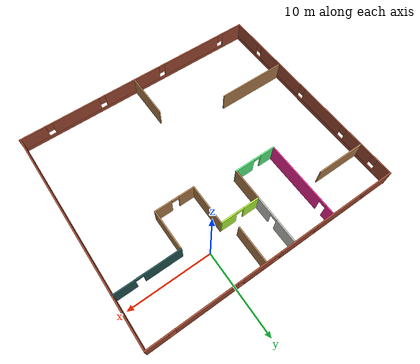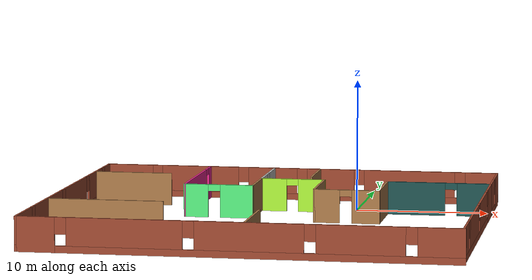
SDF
<?xml version='1.0'?>
<sdf version='1.7'>
  <model name='mybuilding'>
    <pose>-5.10873 -8.92301 0 0 -0 0</pose>
    <link name='Wall_0'>
      <pose>-0.038918 13.3566 0 0 -0 -0.003284</pose>
      <visual name='Wall_0_Visual_0'>
        <pose>-13.7512 0 1.25 0 -0 0</pose>
        <geometry>
          <box>
            <size>3.66966 0.15 2.5</size>
          </box>
        </geometry>
        <material>
          <script>
            <uri>file://media/materials/scripts/gazebo.material</uri>
            <name>Gazebo/Bricks</name>
          </script>
          <ambient>0.2 0.870588 0.976471 1</ambient>
        </material>
        <meta>
          <layer>0</layer>
        </meta>
      </visual>
      <collision name='Wall_0_Collision_0'>
        <geometry>
          <box>
            <size>3.66966 0.15 2.5</size>
          </box>
        </geometry>
        <pose>-13.7512 0 1.25 0 -0 0</pose>
      </collision>
      <visual name='Wall_0_Visual_1'>
        <pose>1.83483 0 0.25 0 -0 0</pose>
        <geometry>
          <box>
            <size>27.5025 0.15 0.5</size>
          </box>
        </geometry>
        <material>
          <script>
            <uri>file://media/materials/scripts/gazebo.material</uri>
            <name>Gazebo/Bricks</name>
          </script>
          <ambient>0.2 0.870588 0.976471 1</ambient>
        </material>
        <meta>
          <layer>0</layer>
        </meta>
      </visual>
      <collision name='Wall_0_Collision_1'>
        <geometry>
          <box>
            <size>27.5025 0.15 0.5</size>
          </box>
        </geometry>
        <pose>1.83483 0 0.25 0 -0 0</pose>
      </collision>
      <visual name='Wall_0_Visual_2'>
        <pose>-8.03594 0 1.5 0 -0 0</pose>
        <geometry>
          <box>
            <size>6.16095 0.15 2</size>
          </box>
        </geometry>
        <material>
          <script>
            <uri>file://media/materials/scripts/gazebo.material</uri>
            <name>Gazebo/Bricks</name>
          </script>
          <ambient>0.2 0.870588 0.976471 1</ambient>
        </material>
        <meta>
          <layer>0</layer>
        </meta>
      </visual>
      <collision name='Wall_0_Collision_2'>
        <geometry>
          <box>
            <size>6.16095 0.15 2</size>
          </box>
        </geometry>
        <pose>-8.03594 0 1.5 0 -0 0</pose>
      </collision>
      <visual name='Wall_0_Visual_3'>
        <pose>-2.21186 0 1.5 0 -0 0</pose>
        <geometry>
          <box>
            <size>3.8872 0.15 2</size>
          </box>
        </geometry>
        <material>
          <script>
            <uri>file://media/materials/scripts/gazebo.material</uri>
            <name>Gazebo/Bricks</name>
          </script>
          <ambient>0.2 0.870588 0.976471 1</ambient>
        </material>
        <meta>
          <layer>0</layer>
        </meta>
      </visual>
      <collision name='Wall_0_Collision_3'>
        <geometry>
          <box>
            <size>3.8872 0.15 2</size>
          </box>
        </geometry>
        <pose>-2.21186 0 1.5 0 -0 0</pose>
      </collision>
      <visual name='Wall_0_Visual_4'>
        <pose>2.41432 0 1.5 0 -0 0</pose>
        <geometry>
          <box>
            <size>3.76517 0.15 2</size>
          </box>
        </geometry>
        <material>
          <script>
            <uri>file://media/materials/scripts/gazebo.material</uri>
            <name>Gazebo/Bricks</name>
          </script>
          <ambient>0.2 0.870588 0.976471 1</ambient>
        </material>
        <meta>
          <layer>0</layer>
        </meta>
      </visual>
      <collision name='Wall_0_Collision_4'>
        <geometry>
          <box>
            <size>3.76517 0.15 2</size>
          </box>
        </geometry>
        <pose>2.41432 0 1.5 0 -0 0</pose>
      </collision>
      <visual name='Wall_0_Visual_5'>
        <pose>8.65852 0 1.5 0 -0 0</pose>
        <geometry>
          <box>
            <size>7.12324 0.15 2</size>
          </box>
        </geometry>
        <material>
          <script>
            <uri>file://media/materials/scripts/gazebo.material</uri>
            <name>Gazebo/Bricks</name>
          </script>
          <ambient>0.2 0.870588 0.976471 1</ambient>
        </material>
        <meta>
          <layer>0</layer>
        </meta>
      </visual>
      <collision name='Wall_0_Collision_5'>
        <geometry>
          <box>
            <size>7.12324 0.15 2</size>
          </box>
        </geometry>
        <pose>8.65852 0 1.5 0 -0 0</pose>
      </collision>
      <visual name='Wall_0_Visual_6'>
        <pose>14.3031 0 1.5 0 -0 0</pose>
        <geometry>
          <box>
            <size>2.56593 0.15 2</size>
          </box>
        </geometry>
        <material>
          <script>
            <uri>file://media/materials/scripts/gazebo.material</uri>
            <name>Gazebo/Bricks</name>
          </script>
          <ambient>0.2 0.870588 0.976471 1</ambient>
        </material>
        <meta>
          <layer>0</layer>
        </meta>
      </visual>
      <collision name='Wall_0_Collision_6'>
        <geometry>
          <box>
            <size>2.56593 0.15 2</size>
          </box>
        </geometry>
        <pose>14.3031 0 1.5 0 -0 0</pose>
      </collision>
      <visual name='Wall_0_Visual_7'>
        <pose>-11.5164 0 1.9 0 -0 0</pose>
        <geometry>
          <box>
            <size>0.8 0.15 1.2</size>
          </box>
        </geometry>
        <material>
          <script>
            <uri>file://media/materials/scripts/gazebo.material</uri>
            <name>Gazebo/Bricks</name>
          </script>
          <ambient>0.2 0.870588 0.976471 1</ambient>
        </material>
        <meta>
          <layer>0</layer>
        </meta>
      </visual>
      <collision name='Wall_0_Collision_7'>
        <geometry>
          <box>
            <size>0.8 0.15 1.2</size>
          </box>
        </geometry>
        <pose>-11.5164 0 1.9 0 -0 0</pose>
      </collision>
      <visual name='Wall_0_Visual_8'>
        <pose>-4.55546 0 1.9 0 -0 0</pose>
        <geometry>
          <box>
            <size>0.8 0.15 1.2</size>
          </box>
        </geometry>
        <material>
          <script>
            <uri>file://media/materials/scripts/gazebo.material</uri>
            <name>Gazebo/Bricks</name>
          </script>
          <ambient>0.2 0.870588 0.976471 1</ambient>
        </material>
        <meta>
          <layer>0</layer>
        </meta>
      </visual>
      <collision name='Wall_0_Collision_8'>
        <geometry>
          <box>
            <size>0.8 0.15 1.2</size>
          </box>
        </geometry>
        <pose>-4.55546 0 1.9 0 -0 0</pose>
      </collision>
      <visual name='Wall_0_Visual_9'>
        <pose>0.131735 0 1.9 0 -0 0</pose>
        <geometry>
          <box>
            <size>0.8 0.15 1.2</size>
          </box>
        </geometry>
        <material>
          <script>
            <uri>file://media/materials/scripts/gazebo.material</uri>
            <name>Gazebo/Bricks</name>
          </script>
          <ambient>0.2 0.870588 0.976471 1</ambient>
        </material>
        <meta>
          <layer>0</layer>
        </meta>
      </visual>
      <collision name='Wall_0_Collision_9'>
        <geometry>
          <box>
            <size>0.8 0.15 1.2</size>
          </box>
        </geometry>
        <pose>0.131735 0 1.9 0 -0 0</pose>
      </collision>
      <visual name='Wall_0_Visual_10'>
        <pose>4.6969 0 1.9 0 -0 0</pose>
        <geometry>
          <box>
            <size>0.8 0.15 1.2</size>
          </box>
        </geometry>
        <material>
          <script>
            <uri>file://media/materials/scripts/gazebo.material</uri>
            <name>Gazebo/Bricks</name>
          </script>
          <ambient>0.2 0.870588 0.976471 1</ambient>
        </material>
        <meta>
          <layer>0</layer>
        </meta>
      </visual>
      <collision name='Wall_0_Collision_10'>
        <geometry>
          <box>
            <size>0.8 0.15 1.2</size>
          </box>
        </geometry>
        <pose>4.6969 0 1.9 0 -0 0</pose>
      </collision>
      <visual name='Wall_0_Visual_11'>
        <pose>12.6201 0 1.9 0 -0 0</pose>
        <geometry>
          <box>
            <size>0.8 0.15 1.2</size>
          </box>
        </geometry>
        <material>
          <script>
            <uri>file://media/materials/scripts/gazebo.material</uri>
            <name>Gazebo/Bricks</name>
          </script>
          <ambient>0.2 0.870588 0.976471 1</ambient>
        </material>
        <meta>
          <layer>0</layer>
        </meta>
      </visual>
      <collision name='Wall_0_Collision_11'>
        <geometry>
          <box>
            <size>0.8 0.15 1.2</size>
          </box>
        </geometry>
        <pose>12.6201 0 1.9 0 -0 0</pose>
      </collision>
    </link>
    <link name='Wall_1'>
      <pose>15.472 10.3719 0 0 -0 -1.5708</pose>
      <visual name='Wall_1_Visual_0'>
        <pose>-1.65507 0 1.25 0 -0 0</pose>
        <geometry>
          <box>
            <size>2.70735 0.15 2.5</size>
          </box>
        </geometry>
        <material>
          <script>
            <uri>file://media/materials/scripts/gazebo.material</uri>
            <name>Gazebo/Bricks</name>
          </script>
          <ambient>1 1 1 1</ambient>
        </material>
        <meta>
          <layer>0</layer>
        </meta>
      </visual>
      <collision name='Wall_1_Collision_0'>
        <geometry>
          <box>
            <size>2.70735 0.15 2.5</size>
          </box>
        </geometry>
        <pose>-1.65507 0 1.25 0 -0 0</pose>
      </collision>
      <visual name='Wall_1_Visual_1'>
        <pose>1.35367 0 0.25 0 -0 0</pose>
        <geometry>
          <box>
            <size>3.31014 0.15 0.5</size>
          </box>
        </geometry>
        <material>
          <script>
            <uri>file://media/materials/scripts/gazebo.material</uri>
            <name>Gazebo/Bricks</name>
          </script>
          <ambient>1 1 1 1</ambient>
        </material>
        <meta>
          <layer>0</layer>
        </meta>
      </visual>
      <collision name='Wall_1_Collision_1'>
        <geometry>
          <box>
            <size>3.31014 0.15 0.5</size>
          </box>
        </geometry>
        <pose>1.35367 0 0.25 0 -0 0</pose>
      </collision>
      <visual name='Wall_1_Visual_2'>
        <pose>1.75367 0 1.5 0 -0 0</pose>
        <geometry>
          <box>
            <size>2.51015 0.15 2</size>
          </box>
        </geometry>
        <material>
          <script>
            <uri>file://media/materials/scripts/gazebo.material</uri>
            <name>Gazebo/Bricks</name>
          </script>
          <ambient>1 1 1 1</ambient>
        </material>
        <meta>
          <layer>0</layer>
        </meta>
      </visual>
      <collision name='Wall_1_Collision_2'>
        <geometry>
          <box>
            <size>2.51015 0.15 2</size>
          </box>
        </geometry>
        <pose>1.75367 0 1.5 0 -0 0</pose>
      </collision>
      <visual name='Wall_1_Visual_3'>
        <pose>0.0986 0 1.9 0 -0 0</pose>
        <geometry>
          <box>
            <size>0.8 0.15 1.2</size>
          </box>
        </geometry>
        <material>
          <script>
            <uri>file://media/materials/scripts/gazebo.material</uri>
            <name>Gazebo/Bricks</name>
          </script>
          <ambient>1 1 1 1</ambient>
        </material>
        <meta>
          <layer>0</layer>
        </meta>
      </visual>
      <collision name='Wall_1_Collision_3'>
        <geometry>
          <box>
            <size>0.8 0.15 1.2</size>
          </box>
        </geometry>
        <pose>0.0986 0 1.9 0 -0 0</pose>
      </collision>
    </link>
    <link name='Wall_13'>
      <pose>-15.5498 0 0 0 -0 -1.5708</pose>
      <visual name='Wall_13_Visual_0'>
        <pose>-12.5326 0 1.25 0 -0 0</pose>
        <geometry>
          <box>
            <size>1.93471 0.15 2.5</size>
          </box>
        </geometry>
        <material>
          <script>
            <uri>file://media/materials/scripts/gazebo.material</uri>
            <name>Gazebo/Bricks</name>
          </script>
          <ambient>1 1 1 1</ambient>
        </material>
        <meta>
          <layer>0</layer>
        </meta>
      </visual>
      <collision name='Wall_13_Collision_0'>
        <geometry>
          <box>
            <size>1.93471 0.15 2.5</size>
          </box>
        </geometry>
        <pose>-12.5326 0 1.25 0 -0 0</pose>
      </collision>
      <visual name='Wall_13_Visual_1'>
        <pose>0.967357 0 0.25 0 -0 0</pose>
        <geometry>
          <box>
            <size>25.0653 0.15 0.5</size>
          </box>
        </geometry>
        <material>
          <script>
            <uri>file://media/materials/scripts/gazebo.material</uri>
            <name>Gazebo/Bricks</name>
          </script>
          <ambient>1 1 1 1</ambient>
        </material>
        <meta>
          <layer>0</layer>
        </meta>
      </visual>
      <collision name='Wall_13_Collision_1'>
        <geometry>
          <box>
            <size>25.0653 0.15 0.5</size>
          </box>
        </geometry>
        <pose>0.967357 0 0.25 0 -0 0</pose>
      </collision>
      <visual name='Wall_13_Visual_2'>
        <pose>-8.73812 0 1.5 0 -0 0</pose>
        <geometry>
          <box>
            <size>4.05434 0.15 2</size>
          </box>
        </geometry>
        <material>
          <script>
            <uri>file://media/materials/scripts/gazebo.material</uri>
            <name>Gazebo/Bricks</name>
          </script>
          <ambient>1 1 1 1</ambient>
        </material>
        <meta>
          <layer>0</layer>
        </meta>
      </visual>
      <collision name='Wall_13_Collision_2'>
        <geometry>
          <box>
            <size>4.05434 0.15 2</size>
          </box>
        </geometry>
        <pose>-8.73812 0 1.5 0 -0 0</pose>
      </collision>
      <visual name='Wall_13_Visual_3'>
        <pose>-2.77133 0 1.5 0 -0 0</pose>
        <geometry>
          <box>
            <size>6.27924 0.15 2</size>
          </box>
        </geometry>
        <material>
          <script>
            <uri>file://media/materials/scripts/gazebo.material</uri>
            <name>Gazebo/Bricks</name>
          </script>
          <ambient>1 1 1 1</ambient>
        </material>
        <meta>
          <layer>0</layer>
        </meta>
      </visual>
      <collision name='Wall_13_Collision_3'>
        <geometry>
          <box>
            <size>6.27924 0.15 2</size>
          </box>
        </geometry>
        <pose>-2.77133 0 1.5 0 -0 0</pose>
      </collision>
      <visual name='Wall_13_Visual_4'>
        <pose>4.913 0 1.5 0 -0 0</pose>
        <geometry>
          <box>
            <size>7.48941 0.15 2</size>
          </box>
        </geometry>
        <material>
          <script>
            <uri>file://media/materials/scripts/gazebo.material</uri>
            <name>Gazebo/Bricks</name>
          </script>
          <ambient>1 1 1 1</ambient>
        </material>
        <meta>
          <layer>0</layer>
        </meta>
      </visual>
      <collision name='Wall_13_Collision_4'>
        <geometry>
          <box>
            <size>7.48941 0.15 2</size>
          </box>
        </geometry>
        <pose>4.913 0 1.5 0 -0 0</pose>
      </collision>
      <visual name='Wall_13_Visual_5'>
        <pose>11.4789 0 1.5 0 -0 0</pose>
        <geometry>
          <box>
            <size>4.04229 0.15 2</size>
          </box>
        </geometry>
        <material>
          <script>
            <uri>file://media/materials/scripts/gazebo.material</uri>
            <name>Gazebo/Bricks</name>
          </script>
          <ambient>1 1 1 1</ambient>
        </material>
        <meta>
          <layer>0</layer>
        </meta>
      </visual>
      <collision name='Wall_13_Collision_5'>
        <geometry>
          <box>
            <size>4.04229 0.15 2</size>
          </box>
        </geometry>
        <pose>11.4789 0 1.5 0 -0 0</pose>
      </collision>
      <visual name='Wall_13_Visual_6'>
        <pose>-11.1653 0 1.9 0 -0 0</pose>
        <geometry>
          <box>
            <size>0.8 0.15 1.2</size>
          </box>
        </geometry>
        <material>
          <script>
            <uri>file://media/materials/scripts/gazebo.material</uri>
            <name>Gazebo/Bricks</name>
          </script>
          <ambient>1 1 1 1</ambient>
        </material>
        <meta>
          <layer>0</layer>
        </meta>
      </visual>
      <collision name='Wall_13_Collision_6'>
        <geometry>
          <box>
            <size>0.8 0.15 1.2</size>
          </box>
        </geometry>
        <pose>-11.1653 0 1.9 0 -0 0</pose>
      </collision>
      <visual name='Wall_13_Visual_7'>
        <pose>-6.31095 0 1.9 0 -0 0</pose>
        <geometry>
          <box>
            <size>0.8 0.15 1.2</size>
          </box>
        </geometry>
        <material>
          <script>
            <uri>file://media/materials/scripts/gazebo.material</uri>
            <name>Gazebo/Bricks</name>
          </script>
          <ambient>1 1 1 1</ambient>
        </material>
        <meta>
          <layer>0</layer>
        </meta>
      </visual>
      <collision name='Wall_13_Collision_7'>
        <geometry>
          <box>
            <size>0.8 0.15 1.2</size>
          </box>
        </geometry>
        <pose>-6.31095 0 1.9 0 -0 0</pose>
      </collision>
      <visual name='Wall_13_Visual_8'>
        <pose>0.768294 0 1.9 0 -0 0</pose>
        <geometry>
          <box>
            <size>0.8 0.15 1.2</size>
          </box>
        </geometry>
        <material>
          <script>
            <uri>file://media/materials/scripts/gazebo.material</uri>
            <name>Gazebo/Bricks</name>
          </script>
          <ambient>1 1 1 1</ambient>
        </material>
        <meta>
          <layer>0</layer>
        </meta>
      </visual>
      <collision name='Wall_13_Collision_8'>
        <geometry>
          <box>
            <size>0.8 0.15 1.2</size>
          </box>
        </geometry>
        <pose>0.768294 0 1.9 0 -0 0</pose>
      </collision>
      <visual name='Wall_13_Visual_9'>
        <pose>9.05771 0 1.9 0 -0 0</pose>
        <geometry>
          <box>
            <size>0.8 0.15 1.2</size>
          </box>
        </geometry>
        <material>
          <script>
            <uri>file://media/materials/scripts/gazebo.material</uri>
            <name>Gazebo/Bricks</name>
          </script>
          <ambient>1 1 1 1</ambient>
        </material>
        <meta>
          <layer>0</layer>
        </meta>
      </visual>
      <collision name='Wall_13_Collision_9'>
        <geometry>
          <box>
            <size>0.8 0.15 1.2</size>
          </box>
        </geometry>
        <pose>9.05771 0 1.9 0 -0 0</pose>
      </collision>
    </link>
    <link name='Wall_15'>
      <collision name='Wall_15_Collision'>
        <geometry>
          <box>
            <size>6 0.15 2.5</size>
          </box>
        </geometry>
        <pose>0 0 1.25 0 -0 0</pose>
      </collision>
      <visual name='Wall_15_Visual'>
        <pose>0 0 1.25 0 -0 0</pose>
        <geometry>
          <box>
            <size>6 0.15 2.5</size>
          </box>
        </geometry>
        <material>
          <script>
            <uri>file://media/materials/scripts/gazebo.material</uri>
            <name>Gazebo/Wood</name>
          </script>
          <ambient>1 0.247059 0 1</ambient>
        </material>
        <meta>
          <layer>0</layer>
        </meta>
      </visual>
      <pose>-12.4748 9.00308 0 0 -0 0</pose>
    </link>
    <link name='Wall_17'>
      <pose>-7.26385 8.45623 0 0 -0 -1.5708</pose>
      <visual name='Wall_17_Visual_0'>
        <pose>-4.34012 0 1.25 0 -0 0</pose>
        <geometry>
          <box>
            <size>1.06976 0.15 2.5</size>
          </box>
        </geometry>
        <material>
          <script>
            <uri>file://media/materials/scripts/gazebo.material</uri>
            <name>Gazebo/Grey</name>
          </script>
          <ambient>0.976471 0.152941 0.596078 1</ambient>
        </material>
        <meta>
          <layer>0</layer>
        </meta>
      </visual>
      <collision name='Wall_17_Collision_0'>
        <geometry>
          <box>
            <size>1.06976 0.15 2.5</size>
          </box>
        </geometry>
        <pose>-4.34012 0 1.25 0 -0 0</pose>
      </collision>
      <visual name='Wall_17_Visual_1'>
        <pose>0.98488 0 1.25 0 -0 0</pose>
        <geometry>
          <box>
            <size>7.78024 0.15 2.5</size>
          </box>
        </geometry>
        <material>
          <script>
            <uri>file://media/materials/scripts/gazebo.material</uri>
            <name>Gazebo/Grey</name>
          </script>
          <ambient>0.976471 0.152941 0.596078 1</ambient>
        </material>
        <meta>
          <layer>0</layer>
        </meta>
      </visual>
      <collision name='Wall_17_Collision_1'>
        <geometry>
          <box>
            <size>7.78024 0.15 2.5</size>
          </box>
        </geometry>
        <pose>0.98488 0 1.25 0 -0 0</pose>
      </collision>
      <visual name='Wall_17_Visual_2'>
        <pose>-3.35524 0 2.25 0 -0 0</pose>
        <geometry>
          <box>
            <size>0.9 0.15 0.5</size>
          </box>
        </geometry>
        <material>
          <script>
            <uri>file://media/materials/scripts/gazebo.material</uri>
            <name>Gazebo/Grey</name>
          </script>
          <ambient>0.976471 0.152941 0.596078 1</ambient>
        </material>
        <meta>
          <layer>0</layer>
        </meta>
      </visual>
      <collision name='Wall_17_Collision_2'>
        <geometry>
          <box>
            <size>0.9 0.15 0.5</size>
          </box>
        </geometry>
        <pose>-3.35524 0 2.25 0 -0 0</pose>
      </collision>
    </link>
    <link name='Wall_19'>
      <pose>-4.67092 3.6587 0 0 -0 -3.14064</pose>
      <visual name='Wall_19_Visual_0'>
        <pose>-1.39262 0 1.25 0 -0 0</pose>
        <geometry>
          <box>
            <size>2.55062 0.15 2.5</size>
          </box>
        </geometry>
        <material>
          <script>
            <uri>file://media/materials/scripts/gazebo.material</uri>
            <name>Gazebo/Grey</name>
          </script>
          <ambient>0.352941 0.976471 0.521569 1</ambient>
        </material>
        <meta>
          <layer>0</layer>
        </meta>
      </visual>
      <collision name='Wall_19_Collision_0'>
        <geometry>
          <box>
            <size>2.55062 0.15 2.5</size>
          </box>
        </geometry>
        <pose>-1.39262 0 1.25 0 -0 0</pose>
      </collision>
      <visual name='Wall_19_Visual_1'>
        <pose>1.72531 0 1.25 0 -0 0</pose>
        <geometry>
          <box>
            <size>1.88525 0.15 2.5</size>
          </box>
        </geometry>
        <material>
          <script>
            <uri>file://media/materials/scripts/gazebo.material</uri>
            <name>Gazebo/Grey</name>
          </script>
          <ambient>0.352941 0.976471 0.521569 1</ambient>
        </material>
        <meta>
          <layer>0</layer>
        </meta>
      </visual>
      <collision name='Wall_19_Collision_1'>
        <geometry>
          <box>
            <size>1.88525 0.15 2.5</size>
          </box>
        </geometry>
        <pose>1.72531 0 1.25 0 -0 0</pose>
      </collision>
      <visual name='Wall_19_Visual_2'>
        <pose>0.332686 0 2.25 0 -0 0</pose>
        <geometry>
          <box>
            <size>0.9 0.15 0.5</size>
          </box>
        </geometry>
        <material>
          <script>
            <uri>file://media/materials/scripts/gazebo.material</uri>
            <name>Gazebo/Grey</name>
          </script>
          <ambient>0.352941 0.976471 0.521569 1</ambient>
        </material>
        <meta>
          <layer>0</layer>
        </meta>
      </visual>
      <collision name='Wall_19_Collision_2'>
        <geometry>
          <box>
            <size>0.9 0.15 0.5</size>
          </box>
        </geometry>
        <pose>0.332686 0 2.25 0 -0 0</pose>
      </collision>
    </link>
    <link name='Wall_2'>
      <pose>11.547 7.43815 0 0 -0 3.14159</pose>
      <visual name='Wall_2_Visual_0'>
        <pose>-2.68952 0 1.25 0 -0 0</pose>
        <geometry>
          <box>
            <size>2.62095 0.15 2.5</size>
          </box>
        </geometry>
        <material>
          <script>
            <uri>file://media/materials/scripts/gazebo.material</uri>
            <name>Gazebo/Grey</name>
          </script>
          <ambient>0.133333 0.341176 0.329412 1</ambient>
        </material>
        <meta>
          <layer>0</layer>
        </meta>
      </visual>
      <collision name='Wall_2_Collision_0'>
        <geometry>
          <box>
            <size>2.62095 0.15 2.5</size>
          </box>
        </geometry>
        <pose>-2.68952 0 1.25 0 -0 0</pose>
      </collision>
      <visual name='Wall_2_Visual_1'>
        <pose>1.76048 0 1.25 0 -0 0</pose>
        <geometry>
          <box>
            <size>4.47905 0.15 2.5</size>
          </box>
        </geometry>
        <material>
          <script>
            <uri>file://media/materials/scripts/gazebo.material</uri>
            <name>Gazebo/Grey</name>
          </script>
          <ambient>0.133333 0.341176 0.329412 1</ambient>
        </material>
        <meta>
          <layer>0</layer>
        </meta>
      </visual>
      <collision name='Wall_2_Collision_1'>
        <geometry>
          <box>
            <size>4.47905 0.15 2.5</size>
          </box>
        </geometry>
        <pose>1.76048 0 1.25 0 -0 0</pose>
      </collision>
      <visual name='Wall_2_Visual_2'>
        <pose>-0.929045 0 2.25 0 -0 0</pose>
        <geometry>
          <box>
            <size>0.9 0.15 0.5</size>
          </box>
        </geometry>
        <material>
          <script>
            <uri>file://media/materials/scripts/gazebo.material</uri>
            <name>Gazebo/Grey</name>
          </script>
          <ambient>0.133333 0.341176 0.329412 1</ambient>
        </material>
        <meta>
          <layer>0</layer>
        </meta>
      </visual>
      <collision name='Wall_2_Collision_2'>
        <geometry>
          <box>
            <size>0.9 0.15 0.5</size>
          </box>
        </geometry>
        <pose>-0.929045 0 2.25 0 -0 0</pose>
      </collision>
    </link>
    <link name='Wall_22'>
      <collision name='Wall_22_Collision'>
        <geometry>
          <box>
            <size>4.5 0.15 2.5</size>
          </box>
        </geometry>
        <pose>0 0 1.25 0 -0 0</pose>
      </collision>
      <visual name='Wall_22_Visual'>
        <pose>0 0 1.25 0 -0 0</pose>
        <geometry>
          <box>
            <size>4.5 0.15 2.5</size>
          </box>
        </geometry>
        <material>
          <script>
            <uri>file://media/materials/scripts/gazebo.material</uri>
            <name>Gazebo/Wood</name>
          </script>
          <ambient>1 0.247059 0 1</ambient>
        </material>
        <meta>
          <layer>0</layer>
        </meta>
      </visual>
      <pose>1.55114 11.1337 0 0 -0 -1.5708</pose>
    </link>
    <link name='Wall_26'>
      <pose>15.472 -2.98685 0 0 -0 -1.5708</pose>
      <visual name='Wall_26_Visual_0'>
        <pose>-8.83766 0 1.25 0 -0 0</pose>
        <geometry>
          <box>
            <size>3.32469 0.15 2.5</size>
          </box>
        </geometry>
        <material>
          <script>
            <uri>file://media/materials/scripts/gazebo.material</uri>
            <name>Gazebo/Bricks</name>
          </script>
          <ambient>1 1 1 1</ambient>
        </material>
        <meta>
          <layer>0</layer>
        </meta>
      </visual>
      <collision name='Wall_26_Collision_0'>
        <geometry>
          <box>
            <size>3.32469 0.15 2.5</size>
          </box>
        </geometry>
        <pose>-8.83766 0 1.25 0 -0 0</pose>
      </collision>
      <visual name='Wall_26_Visual_1'>
        <pose>1.66234 0 0.25 0 -0 0</pose>
        <geometry>
          <box>
            <size>17.6753 0.15 0.5</size>
          </box>
        </geometry>
        <material>
          <script>
            <uri>file://media/materials/scripts/gazebo.material</uri>
            <name>Gazebo/Bricks</name>
          </script>
          <ambient>1 1 1 1</ambient>
        </material>
        <meta>
          <layer>0</layer>
        </meta>
      </visual>
      <collision name='Wall_26_Collision_1'>
        <geometry>
          <box>
            <size>17.6753 0.15 0.5</size>
          </box>
        </geometry>
        <pose>1.66234 0 0.25 0 -0 0</pose>
      </collision>
      <visual name='Wall_26_Visual_2'>
        <pose>-3.60186 0 1.5 0 -0 0</pose>
        <geometry>
          <box>
            <size>5.54691 0.15 2</size>
          </box>
        </geometry>
        <material>
          <script>
            <uri>file://media/materials/scripts/gazebo.material</uri>
            <name>Gazebo/Bricks</name>
          </script>
          <ambient>1 1 1 1</ambient>
        </material>
        <meta>
          <layer>0</layer>
        </meta>
      </visual>
      <collision name='Wall_26_Collision_2'>
        <geometry>
          <box>
            <size>5.54691 0.15 2</size>
          </box>
        </geometry>
        <pose>-3.60186 0 1.5 0 -0 0</pose>
      </collision>
      <visual name='Wall_26_Visual_3'>
        <pose>3.35533 0 1.5 0 -0 0</pose>
        <geometry>
          <box>
            <size>6.76747 0.15 2</size>
          </box>
        </geometry>
        <material>
          <script>
            <uri>file://media/materials/scripts/gazebo.material</uri>
            <name>Gazebo/Bricks</name>
          </script>
          <ambient>1 1 1 1</ambient>
        </material>
        <meta>
          <layer>0</layer>
        </meta>
      </visual>
      <collision name='Wall_26_Collision_3'>
        <geometry>
          <box>
            <size>6.76747 0.15 2</size>
          </box>
        </geometry>
        <pose>3.35533 0 1.5 0 -0 0</pose>
      </collision>
      <visual name='Wall_26_Visual_4'>
        <pose>9.01953 0 1.5 0 -0 0</pose>
        <geometry>
          <box>
            <size>2.96094 0.15 2</size>
          </box>
        </geometry>
        <material>
          <script>
            <uri>file://media/materials/scripts/gazebo.material</uri>
            <name>Gazebo/Bricks</name>
          </script>
          <ambient>1 1 1 1</ambient>
        </material>
        <meta>
          <layer>0</layer>
        </meta>
      </visual>
      <collision name='Wall_26_Collision_4'>
        <geometry>
          <box>
            <size>2.96094 0.15 2</size>
          </box>
        </geometry>
        <pose>9.01953 0 1.5 0 -0 0</pose>
      </collision>
      <visual name='Wall_26_Visual_5'>
        <pose>-6.77531 0 1.9 0 -0 0</pose>
        <geometry>
          <box>
            <size>0.8 0.15 1.2</size>
          </box>
        </geometry>
        <material>
          <script>
            <uri>file://media/materials/scripts/gazebo.material</uri>
            <name>Gazebo/Bricks</name>
          </script>
          <ambient>1 1 1 1</ambient>
        </material>
        <meta>
          <layer>0</layer>
        </meta>
      </visual>
      <collision name='Wall_26_Collision_5'>
        <geometry>
          <box>
            <size>0.8 0.15 1.2</size>
          </box>
        </geometry>
        <pose>-6.77531 0 1.9 0 -0 0</pose>
      </collision>
      <visual name='Wall_26_Visual_6'>
        <pose>-0.428405 0 1.9 0 -0 0</pose>
        <geometry>
          <box>
            <size>0.8 0.15 1.2</size>
          </box>
        </geometry>
        <material>
          <script>
            <uri>file://media/materials/scripts/gazebo.material</uri>
            <name>Gazebo/Bricks</name>
          </script>
          <ambient>1 1 1 1</ambient>
        </material>
        <meta>
          <layer>0</layer>
        </meta>
      </visual>
      <collision name='Wall_26_Collision_6'>
        <geometry>
          <box>
            <size>0.8 0.15 1.2</size>
          </box>
        </geometry>
        <pose>-0.428405 0 1.9 0 -0 0</pose>
      </collision>
      <visual name='Wall_26_Visual_7'>
        <pose>7.13906 0 1.9 0 -0 0</pose>
        <geometry>
          <box>
            <size>0.8 0.15 1.2</size>
          </box>
        </geometry>
        <material>
          <script>
            <uri>file://media/materials/scripts/gazebo.material</uri>
            <name>Gazebo/Bricks</name>
          </script>
          <ambient>1 1 1 1</ambient>
        </material>
        <meta>
          <layer>0</layer>
        </meta>
      </visual>
      <collision name='Wall_26_Collision_7'>
        <geometry>
          <box>
            <size>0.8 0.15 1.2</size>
          </box>
        </geometry>
        <pose>7.13906 0 1.9 0 -0 0</pose>
      </collision>
    </link>
    <link name='Wall_29'>
      <pose>0.000157 -13.425 0 0 -0 0</pose>
      <visual name='Wall_29_Visual_0'>
        <pose>-14.1919 0 1.25 0 -0 0</pose>
        <geometry>
          <box>
            <size>2.86617 0.15 2.5</size>
          </box>
        </geometry>
        <material>
          <script>
            <uri>file://media/materials/scripts/gazebo.material</uri>
            <name>Gazebo/Bricks</name>
          </script>
          <ambient>1 1 1 1</ambient>
        </material>
        <meta>
          <layer>0</layer>
        </meta>
      </visual>
      <collision name='Wall_29_Collision_0'>
        <geometry>
          <box>
            <size>2.86617 0.15 2.5</size>
          </box>
        </geometry>
        <pose>-14.1919 0 1.25 0 -0 0</pose>
      </collision>
      <visual name='Wall_29_Visual_1'>
        <pose>1.43309 0 0.25 0 -0 0</pose>
        <geometry>
          <box>
            <size>28.3838 0.15 0.5</size>
          </box>
        </geometry>
        <material>
          <script>
            <uri>file://media/materials/scripts/gazebo.material</uri>
            <name>Gazebo/Bricks</name>
          </script>
          <ambient>1 1 1 1</ambient>
        </material>
        <meta>
          <layer>0</layer>
        </meta>
      </visual>
      <collision name='Wall_29_Collision_1'>
        <geometry>
          <box>
            <size>28.3838 0.15 0.5</size>
          </box>
        </geometry>
        <pose>1.43309 0 0.25 0 -0 0</pose>
      </collision>
      <visual name='Wall_29_Visual_2'>
        <pose>-7.86717 0 1.5 0 -0 0</pose>
        <geometry>
          <box>
            <size>8.18332 0.15 2</size>
          </box>
        </geometry>
        <material>
          <script>
            <uri>file://media/materials/scripts/gazebo.material</uri>
            <name>Gazebo/Bricks</name>
          </script>
          <ambient>1 1 1 1</ambient>
        </material>
        <meta>
          <layer>0</layer>
        </meta>
      </visual>
      <collision name='Wall_29_Collision_2'>
        <geometry>
          <box>
            <size>8.18332 0.15 2</size>
          </box>
        </geometry>
        <pose>-7.86717 0 1.5 0 -0 0</pose>
      </collision>
      <visual name='Wall_29_Visual_3'>
        <pose>0.835419 0 1.5 0 -0 0</pose>
        <geometry>
          <box>
            <size>7.62186 0.15 2</size>
          </box>
        </geometry>
        <material>
          <script>
            <uri>file://media/materials/scripts/gazebo.material</uri>
            <name>Gazebo/Bricks</name>
          </script>
          <ambient>1 1 1 1</ambient>
        </material>
        <meta>
          <layer>0</layer>
        </meta>
      </visual>
      <collision name='Wall_29_Collision_3'>
        <geometry>
          <box>
            <size>7.62186 0.15 2</size>
          </box>
        </geometry>
        <pose>0.835419 0 1.5 0 -0 0</pose>
      </collision>
      <visual name='Wall_29_Visual_4'>
        <pose>8.50867 0 1.5 0 -0 0</pose>
        <geometry>
          <box>
            <size>6.12464 0.15 2</size>
          </box>
        </geometry>
        <material>
          <script>
            <uri>file://media/materials/scripts/gazebo.material</uri>
            <name>Gazebo/Bricks</name>
          </script>
          <ambient>1 1 1 1</ambient>
        </material>
        <meta>
          <layer>0</layer>
        </meta>
      </visual>
      <collision name='Wall_29_Collision_4'>
        <geometry>
          <box>
            <size>6.12464 0.15 2</size>
          </box>
        </geometry>
        <pose>8.50867 0 1.5 0 -0 0</pose>
      </collision>
      <visual name='Wall_29_Visual_5'>
        <pose>13.998 0 1.5 0 -0 0</pose>
        <geometry>
          <box>
            <size>3.25401 0.15 2</size>
          </box>
        </geometry>
        <material>
          <script>
            <uri>file://media/materials/scripts/gazebo.material</uri>
            <name>Gazebo/Bricks</name>
          </script>
          <ambient>1 1 1 1</ambient>
        </material>
        <meta>
          <layer>0</layer>
        </meta>
      </visual>
      <collision name='Wall_29_Collision_5'>
        <geometry>
          <box>
            <size>3.25401 0.15 2</size>
          </box>
        </geometry>
        <pose>13.998 0 1.5 0 -0 0</pose>
      </collision>
      <visual name='Wall_29_Visual_6'>
        <pose>-12.3588 0 1.9 0 -0 0</pose>
        <geometry>
          <box>
            <size>0.8 0.15 1.2</size>
          </box>
        </geometry>
        <material>
          <script>
            <uri>file://media/materials/scripts/gazebo.material</uri>
            <name>Gazebo/Bricks</name>
          </script>
          <ambient>1 1 1 1</ambient>
        </material>
        <meta>
          <layer>0</layer>
        </meta>
      </visual>
      <collision name='Wall_29_Collision_6'>
        <geometry>
          <box>
            <size>0.8 0.15 1.2</size>
          </box>
        </geometry>
        <pose>-12.3588 0 1.9 0 -0 0</pose>
      </collision>
      <visual name='Wall_29_Visual_7'>
        <pose>-3.37551 0 1.9 0 -0 0</pose>
        <geometry>
          <box>
            <size>0.8 0.15 1.2</size>
          </box>
        </geometry>
        <material>
          <script>
            <uri>file://media/materials/scripts/gazebo.material</uri>
            <name>Gazebo/Bricks</name>
          </script>
          <ambient>1 1 1 1</ambient>
        </material>
        <meta>
          <layer>0</layer>
        </meta>
      </visual>
      <collision name='Wall_29_Collision_7'>
        <geometry>
          <box>
            <size>0.8 0.15 1.2</size>
          </box>
        </geometry>
        <pose>-3.37551 0 1.9 0 -0 0</pose>
      </collision>
      <visual name='Wall_29_Visual_8'>
        <pose>5.04635 0 1.9 0 -0 0</pose>
        <geometry>
          <box>
            <size>0.8 0.15 1.2</size>
          </box>
        </geometry>
        <material>
          <script>
            <uri>file://media/materials/scripts/gazebo.material</uri>
            <name>Gazebo/Bricks</name>
          </script>
          <ambient>1 1 1 1</ambient>
        </material>
        <meta>
          <layer>0</layer>
        </meta>
      </visual>
      <collision name='Wall_29_Collision_8'>
        <geometry>
          <box>
            <size>0.8 0.15 1.2</size>
          </box>
        </geometry>
        <pose>5.04635 0 1.9 0 -0 0</pose>
      </collision>
      <visual name='Wall_29_Visual_9'>
        <pose>11.971 0 1.9 0 -0 0</pose>
        <geometry>
          <box>
            <size>0.8 0.15 1.2</size>
          </box>
        </geometry>
        <material>
          <script>
            <uri>file://media/materials/scripts/gazebo.material</uri>
            <name>Gazebo/Bricks</name>
          </script>
          <ambient>1 1 1 1</ambient>
        </material>
        <meta>
          <layer>0</layer>
        </meta>
      </visual>
      <collision name='Wall_29_Collision_9'>
        <geometry>
          <box>
            <size>0.8 0.15 1.2</size>
          </box>
        </geometry>
        <pose>11.971 0 1.9 0 -0 0</pose>
      </collision>
    </link>
    <link name='Wall_3'>
      <collision name='Wall_3_Collision'>
        <geometry>
          <box>
            <size>5 0.15 2.5</size>
          </box>
        </geometry>
        <pose>0 0 1.25 0 -0 0</pose>
      </collision>
      <visual name='Wall_3_Visual'>
        <pose>0 0 1.25 0 -0 0</pose>
        <geometry>
          <box>
            <size>5 0.15 2.5</size>
          </box>
        </geometry>
        <material>
          <script>
            <uri>file://media/materials/scripts/gazebo.material</uri>
            <name>Gazebo/Wood</name>
          </script>
          <ambient>1 0.247059 0 1</ambient>
        </material>
        <meta>
          <layer>0</layer>
        </meta>
      </visual>
      <pose>7.62201 5.01315 0 0 -0 -1.5708</pose>
    </link>
    <link name='Wall_31'>
      <collision name='Wall_31_Collision'>
        <geometry>
          <box>
            <size>8.5 0.15 2.5</size>
          </box>
        </geometry>
        <pose>0 0 1.25 0 -0 0</pose>
      </collision>
      <visual name='Wall_31_Visual'>
        <pose>0 0 1.25 0 -0 0</pose>
        <geometry>
          <box>
            <size>8.5 0.15 2.5</size>
          </box>
        </geometry>
        <material>
          <script>
            <uri>file://media/materials/scripts/gazebo.material</uri>
            <name>Gazebo/Wood</name>
          </script>
          <ambient>1 0.247059 0 1</ambient>
        </material>
        <meta>
          <layer>0</layer>
        </meta>
      </visual>
      <pose>-11.1849 -5.16245 0 0 -0 3.14159</pose>
    </link>
    <link name='Wall_35'>
      <collision name='Wall_35_Collision'>
        <geometry>
          <box>
            <size>5.75 0.15 2.5</size>
          </box>
        </geometry>
        <pose>0 0 1.25 0 -0 0</pose>
      </collision>
      <visual name='Wall_35_Visual'>
        <pose>0 0 1.25 0 -0 0</pose>
        <geometry>
          <box>
            <size>5.75 0.15 2.5</size>
          </box>
        </geometry>
        <material>
          <script>
            <uri>file://media/materials/scripts/gazebo.material</uri>
            <name>Gazebo/Wood</name>
          </script>
          <ambient>1 0.247059 0 1</ambient>
        </material>
        <meta>
          <layer>0</layer>
        </meta>
      </visual>
      <pose>0.533937 -10.5622 0 0 -0 1.5708</pose>
    </link>
    <link name='Wall_4'>
      <pose>5.19701 2.58815 0 0 -0 3.14159</pose>
      <visual name='Wall_4_Visual_0'>
        <pose>-1.45076 0 1.25 0 -0 0</pose>
        <geometry>
          <box>
            <size>2.09848 0.15 2.5</size>
          </box>
        </geometry>
        <material>
          <script>
            <uri>file://media/materials/scripts/gazebo.material</uri>
            <name>Gazebo/Wood</name>
          </script>
          <ambient>1 0.247059 0 1</ambient>
        </material>
        <meta>
          <layer>0</layer>
        </meta>
      </visual>
      <collision name='Wall_4_Collision_0'>
        <geometry>
          <box>
            <size>2.09848 0.15 2.5</size>
          </box>
        </geometry>
        <pose>-1.45076 0 1.25 0 -0 0</pose>
      </collision>
      <visual name='Wall_4_Visual_1'>
        <pose>1.49924 0 1.25 0 -0 0</pose>
        <geometry>
          <box>
            <size>2.00152 0.15 2.5</size>
          </box>
        </geometry>
        <material>
          <script>
            <uri>file://media/materials/scripts/gazebo.material</uri>
            <name>Gazebo/Wood</name>
          </script>
          <ambient>1 0.247059 0 1</ambient>
        </material>
        <meta>
          <layer>0</layer>
        </meta>
      </visual>
      <collision name='Wall_4_Collision_1'>
        <geometry>
          <box>
            <size>2.00152 0.15 2.5</size>
          </box>
        </geometry>
        <pose>1.49924 0 1.25 0 -0 0</pose>
      </collision>
      <visual name='Wall_4_Visual_2'>
        <pose>0.048479 0 2.25 0 -0 0</pose>
        <geometry>
          <box>
            <size>0.9 0.15 0.5</size>
          </box>
        </geometry>
        <material>
          <script>
            <uri>file://media/materials/scripts/gazebo.material</uri>
            <name>Gazebo/Wood</name>
          </script>
          <ambient>1 0.247059 0 1</ambient>
        </material>
        <meta>
          <layer>0</layer>
        </meta>
      </visual>
      <collision name='Wall_4_Collision_2'>
        <geometry>
          <box>
            <size>0.9 0.15 0.5</size>
          </box>
        </geometry>
        <pose>0.048479 0 2.25 0 -0 0</pose>
      </collision>
    </link>
    <link name='Wall_5'>
      <collision name='Wall_5_Collision'>
        <geometry>
          <box>
            <size>5.07303 0.15 2.5</size>
          </box>
        </geometry>
        <pose>0 0 1.25 0 -0 0</pose>
      </collision>
      <visual name='Wall_5_Visual'>
        <pose>0 0 1.25 0 -0 0</pose>
        <geometry>
          <box>
            <size>5.07303 0.15 2.5</size>
          </box>
        </geometry>
        <material>
          <script>
            <uri>file://media/materials/scripts/gazebo.material</uri>
            <name>Gazebo/Wood</name>
          </script>
          <ambient>1 0.737255 0.968627 1</ambient>
        </material>
        <meta>
          <layer>0</layer>
        </meta>
      </visual>
      <pose>2.77201 5.04966 0 0 -0 1.5708</pose>
    </link>
    <link name='Wall_6'>
      <pose>0.347006 7.51117 0 0 -0 3.14159</pose>
      <visual name='Wall_6_Visual_0'>
        <pose>-1.46383 0 1.25 0 -0 0</pose>
        <geometry>
          <box>
            <size>2.07234 0.15 2.5</size>
          </box>
        </geometry>
        <material>
          <script>
            <uri>file://media/materials/scripts/gazebo.material</uri>
            <name>Gazebo/Grey</name>
          </script>
          <ambient>0.709804 1 0.235294 1</ambient>
        </material>
        <meta>
          <layer>0</layer>
        </meta>
      </visual>
      <collision name='Wall_6_Collision_0'>
        <geometry>
          <box>
            <size>2.07234 0.15 2.5</size>
          </box>
        </geometry>
        <pose>-1.46383 0 1.25 0 -0 0</pose>
      </collision>
      <visual name='Wall_6_Visual_1'>
        <pose>1.48617 0 1.25 0 -0 0</pose>
        <geometry>
          <box>
            <size>2.02766 0.15 2.5</size>
          </box>
        </geometry>
        <material>
          <script>
            <uri>file://media/materials/scripts/gazebo.material</uri>
            <name>Gazebo/Grey</name>
          </script>
          <ambient>0.709804 1 0.235294 1</ambient>
        </material>
        <meta>
          <layer>0</layer>
        </meta>
      </visual>
      <collision name='Wall_6_Collision_1'>
        <geometry>
          <box>
            <size>2.02766 0.15 2.5</size>
          </box>
        </geometry>
        <pose>1.48617 0 1.25 0 -0 0</pose>
      </collision>
      <visual name='Wall_6_Visual_2'>
        <pose>0.022337 0 2.25 0 -0 0</pose>
        <geometry>
          <box>
            <size>0.9 0.15 0.5</size>
          </box>
        </geometry>
        <material>
          <script>
            <uri>file://media/materials/scripts/gazebo.material</uri>
            <name>Gazebo/Grey</name>
          </script>
          <ambient>0.709804 1 0.235294 1</ambient>
        </material>
        <meta>
          <layer>0</layer>
        </meta>
      </visual>
      <collision name='Wall_6_Collision_2'>
        <geometry>
          <box>
            <size>0.9 0.15 0.5</size>
          </box>
        </geometry>
        <pose>0.022337 0 2.25 0 -0 0</pose>
      </collision>
    </link>
    <link name='Wall_7'>
      <pose>-2.07799 10.4362 0 0 -0 1.5708</pose>
      <visual name='Wall_7_Visual_0'>
        <pose>-1.91609 0 1.25 0 -0 0</pose>
        <geometry>
          <box>
            <size>2.16782 0.15 2.5</size>
          </box>
        </geometry>
        <material>
          <script>
            <uri>file://media/materials/scripts/gazebo.material</uri>
            <name>Gazebo/CeilingTiled</name>
          </script>
          <ambient>1 0.247059 0 1</ambient>
        </material>
        <meta>
          <layer>0</layer>
        </meta>
      </visual>
      <collision name='Wall_7_Collision_0'>
        <geometry>
          <box>
            <size>2.16782 0.15 2.5</size>
          </box>
        </geometry>
        <pose>-1.91609 0 1.25 0 -0 0</pose>
      </collision>
      <visual name='Wall_7_Visual_1'>
        <pose>1.53391 0 1.25 0 -0 0</pose>
        <geometry>
          <box>
            <size>2.93218 0.15 2.5</size>
          </box>
        </geometry>
        <material>
          <script>
            <uri>file://media/materials/scripts/gazebo.material</uri>
            <name>Gazebo/CeilingTiled</name>
          </script>
          <ambient>1 0.247059 0 1</ambient>
        </material>
        <meta>
          <layer>0</layer>
        </meta>
      </visual>
      <collision name='Wall_7_Collision_1'>
        <geometry>
          <box>
            <size>2.93218 0.15 2.5</size>
          </box>
        </geometry>
        <pose>1.53391 0 1.25 0 -0 0</pose>
      </collision>
      <visual name='Wall_7_Visual_2'>
        <pose>-0.382177 0 2.25 0 -0 0</pose>
        <geometry>
          <box>
            <size>0.9 0.15 0.5</size>
          </box>
        </geometry>
        <material>
          <script>
            <uri>file://media/materials/scripts/gazebo.material</uri>
            <name>Gazebo/CeilingTiled</name>
          </script>
          <ambient>1 0.247059 0 1</ambient>
        </material>
        <meta>
          <layer>0</layer>
        </meta>
      </visual>
      <collision name='Wall_7_Collision_2'>
        <geometry>
          <box>
            <size>0.9 0.15 0.5</size>
          </box>
        </geometry>
        <pose>-0.382177 0 2.25 0 -0 0</pose>
      </collision>
    </link>
    <link name='Wall_9'>
      <collision name='Wall_9_Collision'>
        <geometry>
          <box>
            <size>4 0.15 2.5</size>
          </box>
        </geometry>
        <pose>0 0 1.25 0 -0 0</pose>
      </collision>
      <visual name='Wall_9_Visual'>
        <pose>0 0 1.25 0 -0 0</pose>
        <geometry>
          <box>
            <size>4 0.15 2.5</size>
          </box>
        </geometry>
        <material>
          <script>
            <uri>file://media/materials/scripts/gazebo.material</uri>
            <name>Gazebo/Wood</name>
          </script>
          <ambient>0.352941 0.976471 0.521569 1</ambient>
        </material>
        <meta>
          <layer>0</layer>
        </meta>
      </visual>
      <pose>-2.07799 5.58617 0 0 -0 -1.5708</pose>
    </link>
    <static>1</static>
  </model>
</sdf>
